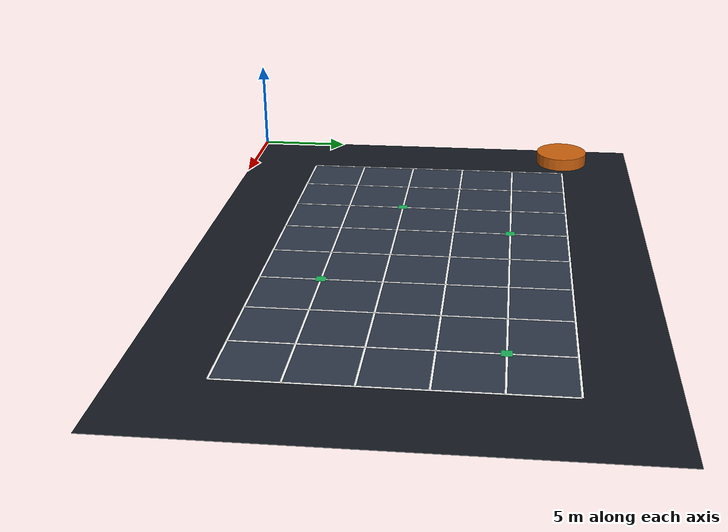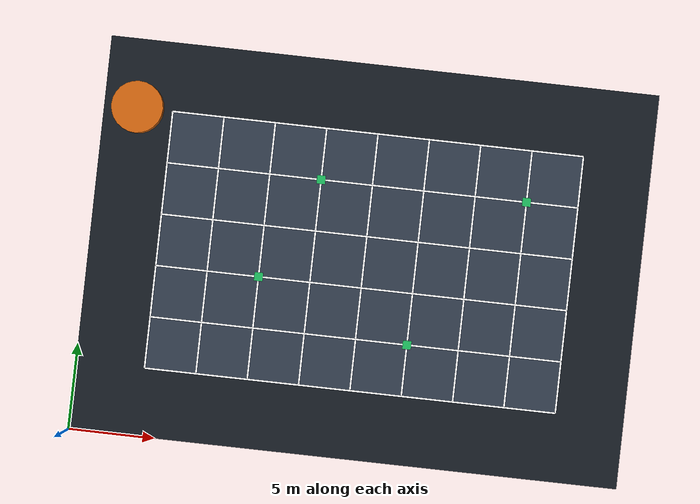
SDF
<?xml version="1.0" ?>
<sdf version="1.10">
  <world name="sprint_grid_preview">
    <gravity>0 0 -9.81</gravity>

    <light name="sun" type="directional">
      <pose>0 0 10 0 0 0</pose>
      <diffuse>0.95 0.95 0.95 1</diffuse>
      <specular>0.2 0.2 0.2 1</specular>
      <direction>-0.3 0.4 -1</direction>
    </light>

    <model name="safe_area_floor">
      <static>true</static>
      <pose>16 11.5 0 0 0 0</pose>
      <link name="link">
        <visual name="visual">
          <geometry><box><size>32 23 0.02</size></box></geometry>
          <material>
            <ambient>0.08 0.10 0.13 1</ambient>
            <diffuse>0.08 0.10 0.13 1</diffuse>
          </material>
        </visual>
        <collision name="collision">
          <geometry><box><size>32 23 0.02</size></box></geometry>
        </collision>
      </link>
    </model>

    <model name="mission_area">
      <static>true</static>
      <pose>16 11.5 0.015 0 0 0</pose>
      <link name="link">
        <visual name="visual">
          <geometry><box><size>24 15 0.01</size></box></geometry>
          <material>
            <ambient>0.18 0.22 0.28 1</ambient>
            <diffuse>0.18 0.22 0.28 1</diffuse>
          </material>
        </visual>
      </link>
    </model>

    <!-- Grid lines: mission origin at (4, 4), spacing 3m, line width 0.10m. -->
    <model name="grid_lines">
      <static>true</static>
      <link name="link">
        <visual name="h_0"><pose>16 4 0.03 0 0 0</pose><geometry><box><size>24 0.10 0.01</size></box></geometry><material><ambient>1 1 1 1</ambient><diffuse>1 1 1 1</diffuse></material></visual>
        <visual name="h_1"><pose>16 7 0.03 0 0 0</pose><geometry><box><size>24 0.10 0.01</size></box></geometry><material><ambient>1 1 1 1</ambient><diffuse>1 1 1 1</diffuse></material></visual>
        <visual name="h_2"><pose>16 10 0.03 0 0 0</pose><geometry><box><size>24 0.10 0.01</size></box></geometry><material><ambient>1 1 1 1</ambient><diffuse>1 1 1 1</diffuse></material></visual>
        <visual name="h_3"><pose>16 13 0.03 0 0 0</pose><geometry><box><size>24 0.10 0.01</size></box></geometry><material><ambient>1 1 1 1</ambient><diffuse>1 1 1 1</diffuse></material></visual>
        <visual name="h_4"><pose>16 16 0.03 0 0 0</pose><geometry><box><size>24 0.10 0.01</size></box></geometry><material><ambient>1 1 1 1</ambient><diffuse>1 1 1 1</diffuse></material></visual>
        <visual name="h_5"><pose>16 19 0.03 0 0 0</pose><geometry><box><size>24 0.10 0.01</size></box></geometry><material><ambient>1 1 1 1</ambient><diffuse>1 1 1 1</diffuse></material></visual>
        <visual name="v_0"><pose>4 11.5 0.03 0 0 0</pose><geometry><box><size>0.10 15 0.01</size></box></geometry><material><ambient>1 1 1 1</ambient><diffuse>1 1 1 1</diffuse></material></visual>
        <visual name="v_1"><pose>7 11.5 0.03 0 0 0</pose><geometry><box><size>0.10 15 0.01</size></box></geometry><material><ambient>1 1 1 1</ambient><diffuse>1 1 1 1</diffuse></material></visual>
        <visual name="v_2"><pose>10 11.5 0.03 0 0 0</pose><geometry><box><size>0.10 15 0.01</size></box></geometry><material><ambient>1 1 1 1</ambient><diffuse>1 1 1 1</diffuse></material></visual>
        <visual name="v_3"><pose>13 11.5 0.03 0 0 0</pose><geometry><box><size>0.10 15 0.01</size></box></geometry><material><ambient>1 1 1 1</ambient><diffuse>1 1 1 1</diffuse></material></visual>
        <visual name="v_4"><pose>16 11.5 0.03 0 0 0</pose><geometry><box><size>0.10 15 0.01</size></box></geometry><material><ambient>1 1 1 1</ambient><diffuse>1 1 1 1</diffuse></material></visual>
        <visual name="v_5"><pose>19 11.5 0.03 0 0 0</pose><geometry><box><size>0.10 15 0.01</size></box></geometry><material><ambient>1 1 1 1</ambient><diffuse>1 1 1 1</diffuse></material></visual>
        <visual name="v_6"><pose>22 11.5 0.03 0 0 0</pose><geometry><box><size>0.10 15 0.01</size></box></geometry><material><ambient>1 1 1 1</ambient><diffuse>1 1 1 1</diffuse></material></visual>
        <visual name="v_7"><pose>25 11.5 0.03 0 0 0</pose><geometry><box><size>0.10 15 0.01</size></box></geometry><material><ambient>1 1 1 1</ambient><diffuse>1 1 1 1</diffuse></material></visual>
        <visual name="v_8"><pose>28 11.5 0.03 0 0 0</pose><geometry><box><size>0.10 15 0.01</size></box></geometry><material><ambient>1 1 1 1</ambient><diffuse>1 1 1 1</diffuse></material></visual>
      </link>
    </model>

    <model name="vertiport">
      <static>true</static>
      <pose>2 19 0.36 0 0 0</pose>
      <link name="link">
        <visual name="pad">
          <geometry><cylinder><radius>1.5</radius><length>0.7</length></cylinder></geometry>
          <material>
            <ambient>0.8 0.38 0.05 1</ambient>
            <diffuse>0.8 0.38 0.05 1</diffuse>
          </material>
        </visual>
        <collision name="collision">
          <geometry><cylinder><radius>1.5</radius><length>0.7</length></cylinder></geometry>
        </collision>
      </link>
    </model>

    <!-- Placeholder green squares for marker positions; texture-based ArUco assets will replace these. -->
    <model name="marker_placeholders">
      <static>true</static>
      <link name="link">
        <visual name="id_3"><pose>10 10 0.06 0 0 0</pose><geometry><box><size>0.5 0.5 0.01</size></box></geometry><material><ambient>0.1 0.7 0.35 1</ambient><diffuse>0.1 0.7 0.35 1</diffuse></material></visual>
        <visual name="id_8"><pose>19 7 0.06 0 0 0</pose><geometry><box><size>0.5 0.5 0.01</size></box></geometry><material><ambient>0.1 0.7 0.35 1</ambient><diffuse>0.1 0.7 0.35 1</diffuse></material></visual>
        <visual name="id_1"><pose>25 16 0.06 0 0 0</pose><geometry><box><size>0.5 0.5 0.01</size></box></geometry><material><ambient>0.1 0.7 0.35 1</ambient><diffuse>0.1 0.7 0.35 1</diffuse></material></visual>
        <visual name="id_5"><pose>13 16 0.06 0 0 0</pose><geometry><box><size>0.5 0.5 0.01</size></box></geometry><material><ambient>0.1 0.7 0.35 1</ambient><diffuse>0.1 0.7 0.35 1</diffuse></material></visual>
      </link>
    </model>
  </world>
</sdf>
